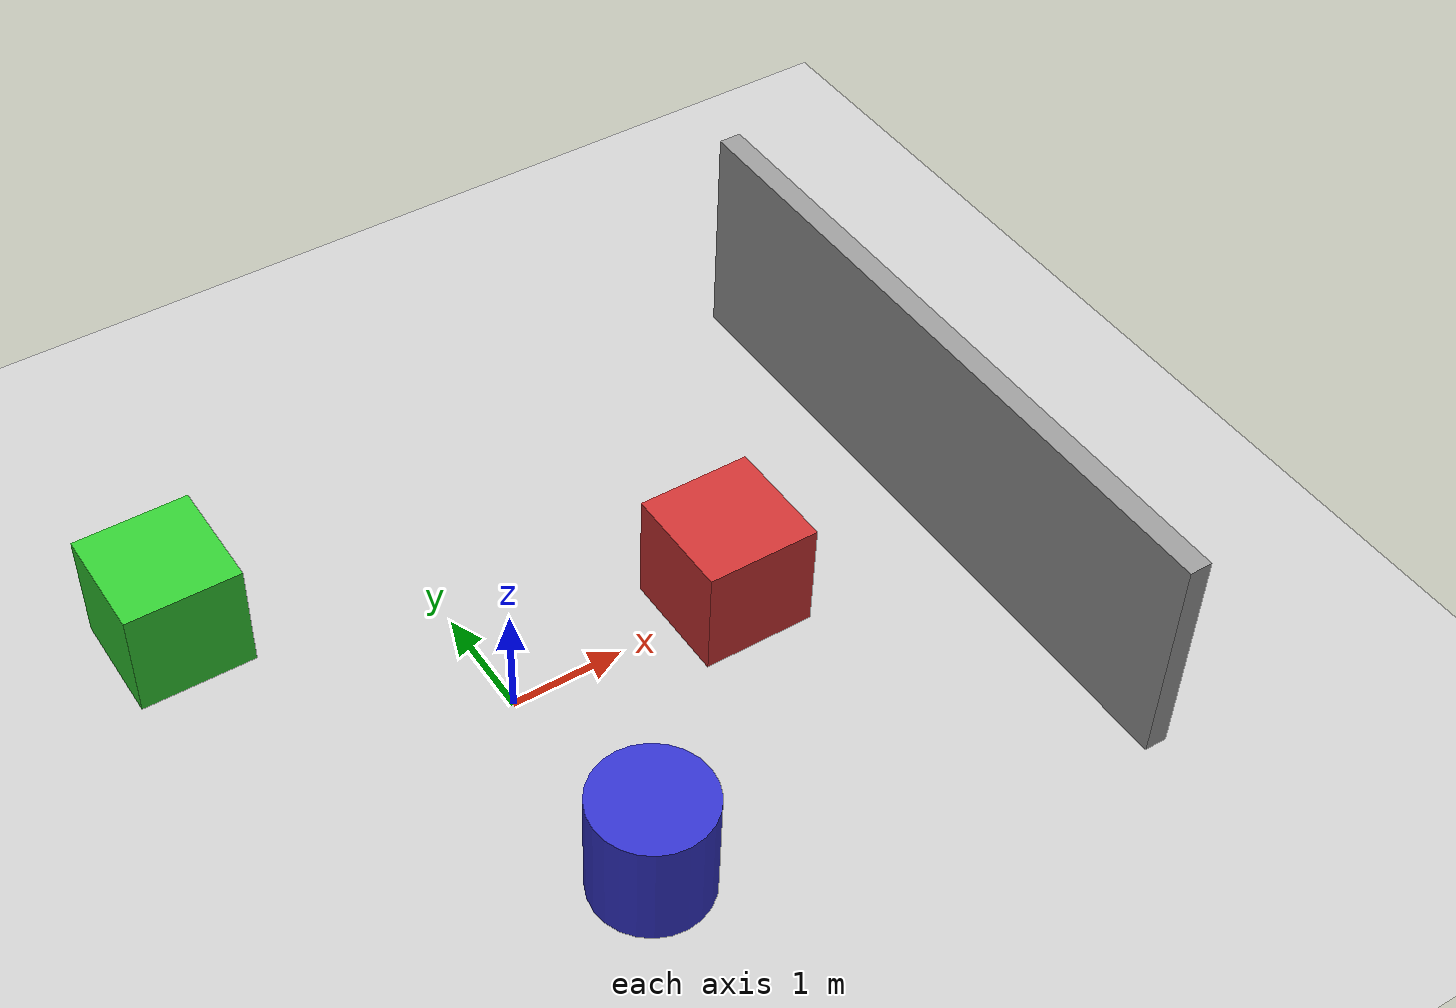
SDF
<?xml version="1.0" ?>
<!--
  Example world file demonstrating the ignition_map_creator plugin.

  This simple world contains a few obstacles and the map creator plugin.
  Use this as a template for your own worlds.
-->
<sdf version="1.8">
  <world name="example_world">

    <!-- Physics settings -->
    <physics name="1ms" type="ignored">
      <max_step_size>0.001</max_step_size>
      <real_time_factor>1.0</real_time_factor>
    </physics>

    <!-- Map Creator Plugin - Add this to enable map generation -->
    <plugin
      filename="libgazebo_gt_map_creator_system.so"
      name="gazebo_gt_map_creator::GazeboGtMapCreator">
    </plugin>

    <!-- Scene settings -->
    <scene>
      <ambient>0.4 0.4 0.4 1</ambient>
      <background>0.7 0.7 0.7 1</background>
    </scene>

    <!-- Ground plane -->
    <model name="ground_plane">
      <static>true</static>
      <link name="link">
        <collision name="collision">
          <geometry>
            <plane>
              <normal>0 0 1</normal>
            </plane>
          </geometry>
        </collision>
        <visual name="visual">
          <geometry>
            <plane>
              <normal>0 0 1</normal>
              <size>100 100</size>
            </plane>
          </geometry>
          <material>
            <ambient>0.8 0.8 0.8 1</ambient>
            <diffuse>0.8 0.8 0.8 1</diffuse>
            <specular>0.8 0.8 0.8 1</specular>
          </material>
        </visual>
      </link>
    </model>

    <!-- Light source -->
    <light type="directional" name="sun">
      <cast_shadows>true</cast_shadows>
      <pose>0 0 10 0 0 0</pose>
      <diffuse>0.8 0.8 0.8 1</diffuse>
      <specular>0.2 0.2 0.2 1</specular>
      <attenuation>
        <range>1000</range>
        <constant>0.9</constant>
        <linear>0.01</linear>
        <quadratic>0.001</quadratic>
      </attenuation>
      <direction>-0.5 0.1 -0.9</direction>
    </light>

    <!-- Example obstacles for testing -->

    <!-- Box obstacle 1 -->
    <model name="box1">
      <static>true</static>
      <pose>2 0 0.5 0 0 0</pose>
      <link name="link">
        <collision name="collision">
          <geometry>
            <box>
              <size>1 1 1</size>
            </box>
          </geometry>
        </collision>
        <visual name="visual">
          <geometry>
            <box>
              <size>1 1 1</size>
            </box>
          </geometry>
          <material>
            <ambient>0.8 0.2 0.2 1</ambient>
            <diffuse>0.8 0.2 0.2 1</diffuse>
          </material>
        </visual>
      </link>
      <plugin filename="ignition-gazebo-label-system" name="ignition::gazebo::systems::Label">
        <label>10</label>
      </plugin>
    </model>

    <!-- Box obstacle 2 -->
    <model name="box2">
      <static>true</static>
      <pose>-2 2 0.5 0 0 0</pose>
      <link name="link">
        <collision name="collision">
          <geometry>
            <box>
              <size>1 1 1</size>
            </box>
          </geometry>
        </collision>
        <visual name="visual">
          <geometry>
            <box>
              <size>1 1 1</size>
            </box>
          </geometry>
          <material>
            <ambient>0.2 0.8 0.2 1</ambient>
            <diffuse>0.2 0.8 0.2 1</diffuse>
          </material>
        </visual>
      </link>
      <plugin filename="ignition-gazebo-label-system" name="ignition::gazebo::systems::Label">
        <label>20</label>
      </plugin>
    </model>

    <!-- Cylinder obstacle -->
    <model name="cylinder1">
      <static>true</static>
      <pose>0 -2 0.5 0 0 0</pose>
      <link name="link">
        <collision name="collision">
          <geometry>
            <cylinder>
              <radius>0.5</radius>
              <length>1.0</length>
            </cylinder>
          </geometry>
        </collision>
        <visual name="visual">
          <geometry>
            <cylinder>
              <radius>0.5</radius>
              <length>1.0</length>
            </cylinder>
          </geometry>
          <material>
            <ambient>0.2 0.2 0.8 1</ambient>
            <diffuse>0.2 0.2 0.8 1</diffuse>
          </material>
        </visual>
      </link>
      <plugin filename="ignition-gazebo-label-system" name="ignition::gazebo::systems::Label">
        <label>30</label>
      </plugin>
    </model>

    <!-- Wall -->
    <model name="wall">
      <static>true</static>
      <pose>4 0 1 0 0 0</pose>
      <link name="link">
        <collision name="collision">
          <geometry>
            <box>
              <size>0.2 6 2</size>
            </box>
          </geometry>
        </collision>
        <visual name="visual">
          <geometry>
            <box>
              <size>0.2 6 2</size>
            </box>
          </geometry>
          <material>
            <ambient>0.6 0.6 0.6 1</ambient>
            <diffuse>0.6 0.6 0.6 1</diffuse>
          </material>
        </visual>
      </link>
      <plugin filename="ignition-gazebo-label-system" name="ignition::gazebo::systems::Label">
        <label>40</label>
      </plugin>
    </model>

  </world>
</sdf>
